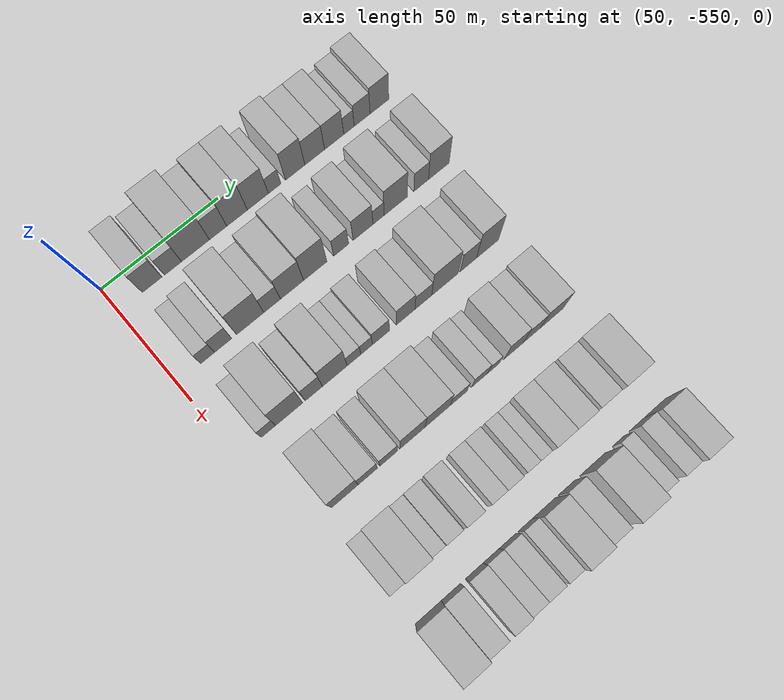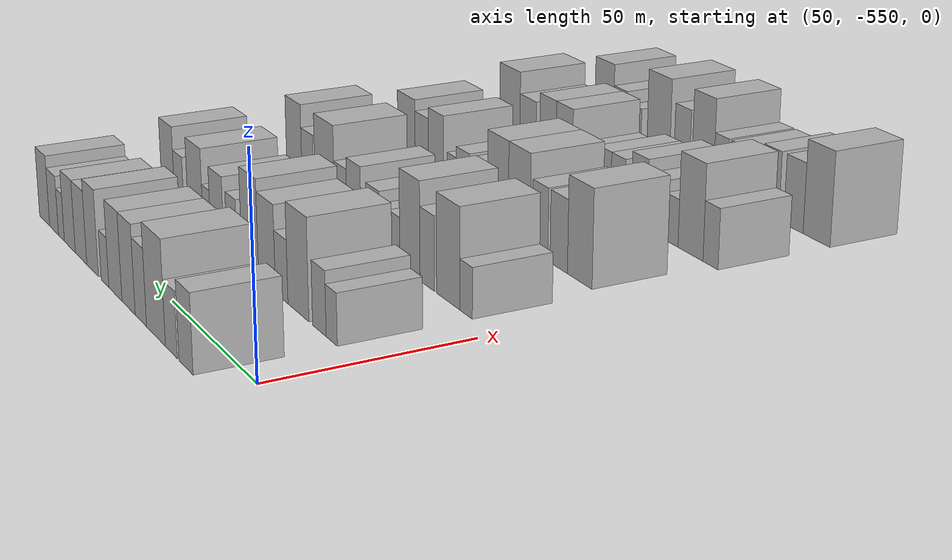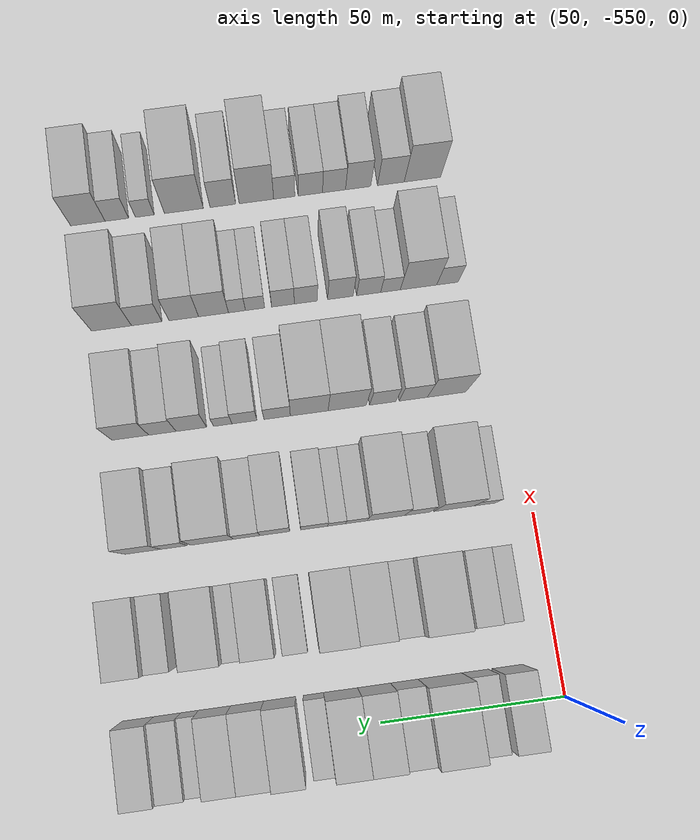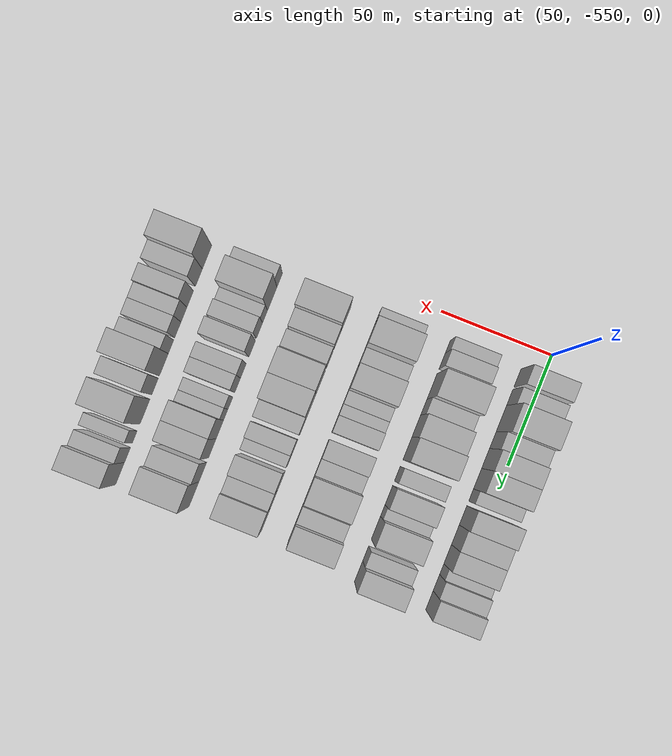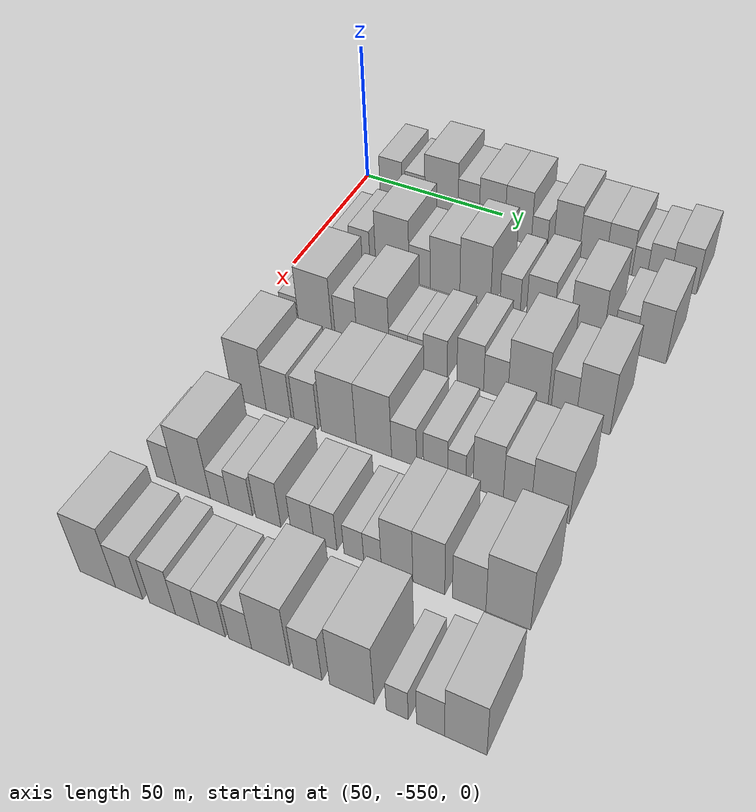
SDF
<sdf version="1.6">
 <world name="default">
  <model name="building_1">
   <static>1</static>
   <pose>50.0000 -535.8511 0 0.000000 0.000000 0.000000</pose>
   <link name="link">
    <pose>0 0 9.00 0 0 0</pose>
    <collision name="collision"><geometry><box><size>20.0000 8.2978 18.0000</size></box></geometry></collision>
    <visual name="visual">
     <cast_shadows>0</cast_shadows>
     <geometry><box><size>20.0000 8.2978 18.0000</size></box></geometry>
     <material>
      <script>
       <uri>model://HANNAS_wall/materials/scripts</uri>
       <uri>model://HANNAS_wall/materials/textures</uri>
       <name>vrc/HANNAS_wall</name>
      </script>
     </material>
    </visual>
   </link>
  </model>
  <model name="building_2">
   <static>1</static>
   <pose>50.0000 -527.0699 0 0.000000 0.000000 0.000000</pose>
   <link name="link">
    <pose>0 0 7.50 0 0 0</pose>
    <collision name="collision"><geometry><box><size>20.0000 7.2646 15.0000</size></box></geometry></collision>
    <visual name="visual">
     <cast_shadows>0</cast_shadows>
     <geometry><box><size>20.0000 7.2646 15.0000</size></box></geometry>
     <material>
      <script>
       <uri>model://HANNAS_wall/materials/scripts</uri>
       <uri>model://HANNAS_wall/materials/textures</uri>
       <name>vrc/HANNAS_wall</name>
      </script>
     </material>
    </visual>
   </link>
  </model>
  <model name="building_3">
   <static>1</static>
   <pose>50.0000 -517.4618 0 0.000000 0.000000 0.000000</pose>
   <link name="link">
    <pose>0 0 12.00 0 0 0</pose>
    <collision name="collision"><geometry><box><size>20.0000 11.9516 24.0000</size></box></geometry></collision>
    <visual name="visual">
     <cast_shadows>0</cast_shadows>
     <geometry><box><size>20.0000 11.9516 24.0000</size></box></geometry>
     <material>
      <script>
       <uri>model://HANNAS_wall/materials/scripts</uri>
       <uri>model://HANNAS_wall/materials/textures</uri>
       <name>vrc/HANNAS_wall</name>
      </script>
     </material>
    </visual>
   </link>
  </model>
  <model name="building_4">
   <static>1</static>
   <pose>50.0000 -507.7472 0 0.000000 0.000000 0.000000</pose>
   <link name="link">
    <pose>0 0 9.00 0 0 0</pose>
    <collision name="collision"><geometry><box><size>20.0000 7.4775 18.0000</size></box></geometry></collision>
    <visual name="visual">
     <cast_shadows>0</cast_shadows>
     <geometry><box><size>20.0000 7.4775 18.0000</size></box></geometry>
     <material>
      <script>
       <uri>model://HANNAS_wall/materials/scripts</uri>
       <uri>model://HANNAS_wall/materials/textures</uri>
       <name>vrc/HANNAS_wall</name>
      </script>
     </material>
    </visual>
   </link>
  </model>
  <model name="building_5">
   <static>1</static>
   <pose>50.0000 -499.5124 0 0.000000 0.000000 0.000000</pose>
   <link name="link">
    <pose>0 0 10.50 0 0 0</pose>
    <collision name="collision"><geometry><box><size>20.0000 8.9919 21.0000</size></box></geometry></collision>
    <visual name="visual">
     <cast_shadows>0</cast_shadows>
     <geometry><box><size>20.0000 8.9919 21.0000</size></box></geometry>
     <material>
      <script>
       <uri>model://HANNAS_wall/materials/scripts</uri>
       <uri>model://HANNAS_wall/materials/textures</uri>
       <name>vrc/HANNAS_wall</name>
      </script>
     </material>
    </visual>
   </link>
  </model>
  <model name="building_6">
   <static>1</static>
   <pose>50.0000 -490.3969 0 0.000000 0.000000 0.000000</pose>
   <link name="link">
    <pose>0 0 10.50 0 0 0</pose>
    <collision name="collision"><geometry><box><size>20.0000 9.2392 21.0000</size></box></geometry></collision>
    <visual name="visual">
     <cast_shadows>0</cast_shadows>
     <geometry><box><size>20.0000 9.2392 21.0000</size></box></geometry>
     <material>
      <script>
       <uri>model://HANNAS_wall/materials/scripts</uri>
       <uri>model://HANNAS_wall/materials/textures</uri>
       <name>vrc/HANNAS_wall</name>
      </script>
     </material>
    </visual>
   </link>
  </model>
  <model name="building_7">
   <static>1</static>
   <pose>50.0000 -483.0054 0 0.000000 0.000000 0.000000</pose>
   <link name="link">
    <pose>0 0 6.00 0 0 0</pose>
    <collision name="collision"><geometry><box><size>20.0000 5.5439 12.0000</size></box></geometry></collision>
    <visual name="visual">
     <cast_shadows>0</cast_shadows>
     <geometry><box><size>20.0000 5.5439 12.0000</size></box></geometry>
     <material>
      <script>
       <uri>model://HANNAS_wall/materials/scripts</uri>
       <uri>model://HANNAS_wall/materials/textures</uri>
       <name>vrc/HANNAS_wall</name>
      </script>
     </material>
    </visual>
   </link>
  </model>
  <model name="building_8">
   <static>1</static>
   <pose>50.0000 -473.8988 0 0.000000 0.000000 0.000000</pose>
   <link name="link">
    <pose>0 0 10.50 0 0 0</pose>
    <collision name="collision"><geometry><box><size>20.0000 8.6692 21.0000</size></box></geometry></collision>
    <visual name="visual">
     <cast_shadows>0</cast_shadows>
     <geometry><box><size>20.0000 8.6692 21.0000</size></box></geometry>
     <material>
      <script>
       <uri>model://HANNAS_wall/materials/scripts</uri>
       <uri>model://HANNAS_wall/materials/textures</uri>
       <name>vrc/HANNAS_wall</name>
      </script>
     </material>
    </visual>
   </link>
  </model>
  <model name="building_9">
   <static>1</static>
   <pose>50.0000 -465.1315 0 0.000000 0.000000 0.000000</pose>
   <link name="link">
    <pose>0 0 9.00 0 0 0</pose>
    <collision name="collision"><geometry><box><size>20.0000 8.8655 18.0000</size></box></geometry></collision>
    <visual name="visual">
     <cast_shadows>0</cast_shadows>
     <geometry><box><size>20.0000 8.8655 18.0000</size></box></geometry>
     <material>
      <script>
       <uri>model://HANNAS_wall/materials/scripts</uri>
       <uri>model://HANNAS_wall/materials/textures</uri>
       <name>vrc/HANNAS_wall</name>
      </script>
     </material>
    </visual>
   </link>
  </model>
  <model name="building_10">
   <static>1</static>
   <pose>50.0000 -456.3737 0 0.000000 0.000000 0.000000</pose>
   <link name="link">
    <pose>0 0 9.00 0 0 0</pose>
    <collision name="collision"><geometry><box><size>20.0000 8.6501 18.0000</size></box></geometry></collision>
    <visual name="visual">
     <cast_shadows>0</cast_shadows>
     <geometry><box><size>20.0000 8.6501 18.0000</size></box></geometry>
     <material>
      <script>
       <uri>model://HANNAS_wall/materials/scripts</uri>
       <uri>model://HANNAS_wall/materials/textures</uri>
       <name>vrc/HANNAS_wall</name>
      </script>
     </material>
    </visual>
   </link>
  </model>
  <model name="building_11">
   <static>1</static>
   <pose>50.0000 -449.6461 0 0.000000 0.000000 0.000000</pose>
   <link name="link">
    <pose>0 0 6.00 0 0 0</pose>
    <collision name="collision"><geometry><box><size>20.0000 4.8050 12.0000</size></box></geometry></collision>
    <visual name="visual">
     <cast_shadows>0</cast_shadows>
     <geometry><box><size>20.0000 4.8050 12.0000</size></box></geometry>
     <material>
      <script>
       <uri>model://HANNAS_wall/materials/scripts</uri>
       <uri>model://HANNAS_wall/materials/textures</uri>
       <name>vrc/HANNAS_wall</name>
      </script>
     </material>
    </visual>
   </link>
  </model>
  <model name="building_12">
   <static>1</static>
   <pose>50.0000 -443.6025 0 0.000000 0.000000 0.000000</pose>
   <link name="link">
    <pose>0 0 7.50 0 0 0</pose>
    <collision name="collision"><geometry><box><size>20.0000 7.2822 15.0000</size></box></geometry></collision>
    <visual name="visual">
     <cast_shadows>0</cast_shadows>
     <geometry><box><size>20.0000 7.2822 15.0000</size></box></geometry>
     <material>
      <script>
       <uri>model://HANNAS_wall/materials/scripts</uri>
       <uri>model://HANNAS_wall/materials/textures</uri>
       <name>vrc/HANNAS_wall</name>
      </script>
     </material>
    </visual>
   </link>
  </model>
  <model name="building_13">
   <static>1</static>
   <pose>50.0000 -435.6851 0 0.000000 0.000000 0.000000</pose>
   <link name="link">
    <pose>0 0 9.00 0 0 0</pose>
    <collision name="collision"><geometry><box><size>20.0000 8.5528 18.0000</size></box></geometry></collision>
    <visual name="visual">
     <cast_shadows>0</cast_shadows>
     <geometry><box><size>20.0000 8.5528 18.0000</size></box></geometry>
     <material>
      <script>
       <uri>model://HANNAS_wall/materials/scripts</uri>
       <uri>model://HANNAS_wall/materials/textures</uri>
       <name>vrc/HANNAS_wall</name>
      </script>
     </material>
    </visual>
   </link>
  </model>
  <model name="building_121">
   <static>1</static>
   <pose>82.0000 -537.1102 0 0.000000 0.000000 0.000000</pose>
   <link name="link">
    <pose>0 0 6.00 0 0 0</pose>
    <collision name="collision"><geometry><box><size>20.0000 5.7795 12.0000</size></box></geometry></collision>
    <visual name="visual">
     <cast_shadows>0</cast_shadows>
     <geometry><box><size>20.0000 5.7795 12.0000</size></box></geometry>
     <material>
      <script>
       <uri>model://HANNAS_wall/materials/scripts</uri>
       <uri>model://HANNAS_wall/materials/textures</uri>
       <name>vrc/HANNAS_wall</name>
      </script>
     </material>
    </visual>
   </link>
  </model>
  <model name="building_122">
   <static>1</static>
   <pose>82.0000 -530.6249 0 0.000000 0.000000 0.000000</pose>
   <link name="link">
    <pose>0 0 7.50 0 0 0</pose>
    <collision name="collision"><geometry><box><size>20.0000 7.1912 15.0000</size></box></geometry></collision>
    <visual name="visual">
     <cast_shadows>0</cast_shadows>
     <geometry><box><size>20.0000 7.1912 15.0000</size></box></geometry>
     <material>
      <script>
       <uri>model://HANNAS_wall/materials/scripts</uri>
       <uri>model://HANNAS_wall/materials/textures</uri>
       <name>vrc/HANNAS_wall</name>
      </script>
     </material>
    </visual>
   </link>
  </model>
  <model name="building_123">
   <static>1</static>
   <pose>82.0000 -519.2367 0 0.000000 0.000000 0.000000</pose>
   <link name="link">
    <pose>0 0 12.00 0 0 0</pose>
    <collision name="collision"><geometry><box><size>20.0000 11.5851 24.0000</size></box></geometry></collision>
    <visual name="visual">
     <cast_shadows>0</cast_shadows>
     <geometry><box><size>20.0000 11.5851 24.0000</size></box></geometry>
     <material>
      <script>
       <uri>model://HANNAS_wall/materials/scripts</uri>
       <uri>model://HANNAS_wall/materials/textures</uri>
       <name>vrc/HANNAS_wall</name>
      </script>
     </material>
    </visual>
   </link>
  </model>
  <model name="building_124">
   <static>1</static>
   <pose>82.0000 -509.8719 0 0.000000 0.000000 0.000000</pose>
   <link name="link">
    <pose>0 0 7.50 0 0 0</pose>
    <collision name="collision"><geometry><box><size>20.0000 7.1445 15.0000</size></box></geometry></collision>
    <visual name="visual">
     <cast_shadows>0</cast_shadows>
     <geometry><box><size>20.0000 7.1445 15.0000</size></box></geometry>
     <material>
      <script>
       <uri>model://HANNAS_wall/materials/scripts</uri>
       <uri>model://HANNAS_wall/materials/textures</uri>
       <name>vrc/HANNAS_wall</name>
      </script>
     </material>
    </visual>
   </link>
  </model>
  <model name="building_125">
   <static>1</static>
   <pose>82.0000 -501.3055 0 0.000000 0.000000 0.000000</pose>
   <link name="link">
    <pose>0 0 10.50 0 0 0</pose>
    <collision name="collision"><geometry><box><size>20.0000 9.9885 21.0000</size></box></geometry></collision>
    <visual name="visual">
     <cast_shadows>0</cast_shadows>
     <geometry><box><size>20.0000 9.9885 21.0000</size></box></geometry>
     <material>
      <script>
       <uri>model://HANNAS_wall/materials/scripts</uri>
       <uri>model://HANNAS_wall/materials/textures</uri>
       <name>vrc/HANNAS_wall</name>
      </script>
     </material>
    </visual>
   </link>
  </model>
  <model name="building_126">
   <static>1</static>
   <pose>82.0000 -491.2129 0 0.000000 0.000000 0.000000</pose>
   <link name="link">
    <pose>0 0 12.00 0 0 0</pose>
    <collision name="collision"><geometry><box><size>20.0000 10.1966 24.0000</size></box></geometry></collision>
    <visual name="visual">
     <cast_shadows>0</cast_shadows>
     <geometry><box><size>20.0000 10.1966 24.0000</size></box></geometry>
     <material>
      <script>
       <uri>model://HANNAS_wall/materials/scripts</uri>
       <uri>model://HANNAS_wall/materials/textures</uri>
       <name>vrc/HANNAS_wall</name>
      </script>
     </material>
    </visual>
   </link>
  </model>
  <model name="building_127">
   <static>1</static>
   <pose>82.0000 -479.8260 0 0.000000 0.000000 0.000000</pose>
   <link name="link">
    <pose>0 0 7.50 0 0 0</pose>
    <collision name="collision"><geometry><box><size>20.0000 6.5773 15.0000</size></box></geometry></collision>
    <visual name="visual">
     <cast_shadows>0</cast_shadows>
     <geometry><box><size>20.0000 6.5773 15.0000</size></box></geometry>
     <material>
      <script>
       <uri>model://HANNAS_wall/materials/scripts</uri>
       <uri>model://HANNAS_wall/materials/textures</uri>
       <name>vrc/HANNAS_wall</name>
      </script>
     </material>
    </visual>
   </link>
  </model>
  <model name="building_128">
   <static>1</static>
   <pose>82.0000 -470.1416 0 0.000000 0.000000 0.000000</pose>
   <link name="link">
    <pose>0 0 9.00 0 0 0</pose>
    <collision name="collision"><geometry><box><size>20.0000 8.7916 18.0000</size></box></geometry></collision>
    <visual name="visual">
     <cast_shadows>0</cast_shadows>
     <geometry><box><size>20.0000 8.7916 18.0000</size></box></geometry>
     <material>
      <script>
       <uri>model://HANNAS_wall/materials/scripts</uri>
       <uri>model://HANNAS_wall/materials/textures</uri>
       <name>vrc/HANNAS_wall</name>
      </script>
     </material>
    </visual>
   </link>
  </model>
  <model name="building_129">
   <static>1</static>
   <pose>82.0000 -463.2264 0 0.000000 0.000000 0.000000</pose>
   <link name="link">
    <pose>0 0 6.00 0 0 0</pose>
    <collision name="collision"><geometry><box><size>20.0000 5.0387 12.0000</size></box></geometry></collision>
    <visual name="visual">
     <cast_shadows>0</cast_shadows>
     <geometry><box><size>20.0000 5.0387 12.0000</size></box></geometry>
     <material>
      <script>
       <uri>model://HANNAS_wall/materials/scripts</uri>
       <uri>model://HANNAS_wall/materials/textures</uri>
       <name>vrc/HANNAS_wall</name>
      </script>
     </material>
    </visual>
   </link>
  </model>
  <model name="building_130">
   <static>1</static>
   <pose>82.0000 -455.5113 0 0.000000 0.000000 0.000000</pose>
   <link name="link">
    <pose>0 0 10.50 0 0 0</pose>
    <collision name="collision"><geometry><box><size>20.0000 10.3915 21.0000</size></box></geometry></collision>
    <visual name="visual">
     <cast_shadows>0</cast_shadows>
     <geometry><box><size>20.0000 10.3915 21.0000</size></box></geometry>
     <material>
      <script>
       <uri>model://HANNAS_wall/materials/scripts</uri>
       <uri>model://HANNAS_wall/materials/textures</uri>
       <name>vrc/HANNAS_wall</name>
      </script>
     </material>
    </visual>
   </link>
  </model>
  <model name="building_131">
   <static>1</static>
   <pose>82.0000 -443.9804 0 0.000000 0.000000 0.000000</pose>
   <link name="link">
    <pose>0 0 7.50 0 0 0</pose>
    <collision name="collision"><geometry><box><size>20.0000 6.6704 15.0000</size></box></geometry></collision>
    <visual name="visual">
     <cast_shadows>0</cast_shadows>
     <geometry><box><size>20.0000 6.6704 15.0000</size></box></geometry>
     <material>
      <script>
       <uri>model://HANNAS_wall/materials/scripts</uri>
       <uri>model://HANNAS_wall/materials/textures</uri>
       <name>vrc/HANNAS_wall</name>
      </script>
     </material>
    </visual>
   </link>
  </model>
  <model name="building_132">
   <static>1</static>
   <pose>82.0000 -435.9180 0 0.000000 0.000000 0.000000</pose>
   <link name="link">
    <pose>0 0 10.50 0 0 0</pose>
    <collision name="collision"><geometry><box><size>20.0000 9.4544 21.0000</size></box></geometry></collision>
    <visual name="visual">
     <cast_shadows>0</cast_shadows>
     <geometry><box><size>20.0000 9.4544 21.0000</size></box></geometry>
     <material>
      <script>
       <uri>model://HANNAS_wall/materials/scripts</uri>
       <uri>model://HANNAS_wall/materials/textures</uri>
       <name>vrc/HANNAS_wall</name>
      </script>
     </material>
    </visual>
   </link>
  </model>
  <model name="building_245">
   <static>1</static>
   <pose>114.0000 -537.0485 0 0.000000 0.000000 0.000000</pose>
   <link name="link">
    <pose>0 0 6.00 0 0 0</pose>
    <collision name="collision"><geometry><box><size>20.0000 5.9030 12.0000</size></box></geometry></collision>
    <visual name="visual">
     <cast_shadows>0</cast_shadows>
     <geometry><box><size>20.0000 5.9030 12.0000</size></box></geometry>
     <material>
      <script>
       <uri>model://HANNAS_wall/materials/scripts</uri>
       <uri>model://HANNAS_wall/materials/textures</uri>
       <name>vrc/HANNAS_wall</name>
      </script>
     </material>
    </visual>
   </link>
  </model>
  <model name="building_246">
   <static>1</static>
   <pose>114.0000 -528.4424 0 0.000000 0.000000 0.000000</pose>
   <link name="link">
    <pose>0 0 12.00 0 0 0</pose>
    <collision name="collision"><geometry><box><size>20.0000 11.3092 24.0000</size></box></geometry></collision>
    <visual name="visual">
     <cast_shadows>0</cast_shadows>
     <geometry><box><size>20.0000 11.3092 24.0000</size></box></geometry>
     <material>
      <script>
       <uri>model://HANNAS_wall/materials/scripts</uri>
       <uri>model://HANNAS_wall/materials/textures</uri>
       <name>vrc/HANNAS_wall</name>
      </script>
     </material>
    </visual>
   </link>
  </model>
  <model name="building_247">
   <static>1</static>
   <pose>114.0000 -518.1438 0 0.000000 0.000000 0.000000</pose>
   <link name="link">
    <pose>0 0 9.00 0 0 0</pose>
    <collision name="collision"><geometry><box><size>20.0000 7.2878 18.0000</size></box></geometry></collision>
    <visual name="visual">
     <cast_shadows>0</cast_shadows>
     <geometry><box><size>20.0000 7.2878 18.0000</size></box></geometry>
     <material>
      <script>
       <uri>model://HANNAS_wall/materials/scripts</uri>
       <uri>model://HANNAS_wall/materials/textures</uri>
       <name>vrc/HANNAS_wall</name>
      </script>
     </material>
    </visual>
   </link>
  </model>
  <model name="building_248">
   <static>1</static>
   <pose>114.0000 -509.2557 0 0.000000 0.000000 0.000000</pose>
   <link name="link">
    <pose>0 0 12.00 0 0 0</pose>
    <collision name="collision"><geometry><box><size>20.0000 10.4885 24.0000</size></box></geometry></collision>
    <visual name="visual">
     <cast_shadows>0</cast_shadows>
     <geometry><box><size>20.0000 10.4885 24.0000</size></box></geometry>
     <material>
      <script>
       <uri>model://HANNAS_wall/materials/scripts</uri>
       <uri>model://HANNAS_wall/materials/textures</uri>
       <name>vrc/HANNAS_wall</name>
      </script>
     </material>
    </visual>
   </link>
  </model>
  <model name="building_249">
   <static>1</static>
   <pose>114.0000 -501.0436 0 0.000000 0.000000 0.000000</pose>
   <link name="link">
    <pose>0 0 6.00 0 0 0</pose>
    <collision name="collision"><geometry><box><size>20.0000 5.9357 12.0000</size></box></geometry></collision>
    <visual name="visual">
     <cast_shadows>0</cast_shadows>
     <geometry><box><size>20.0000 5.9357 12.0000</size></box></geometry>
     <material>
      <script>
       <uri>model://HANNAS_wall/materials/scripts</uri>
       <uri>model://HANNAS_wall/materials/textures</uri>
       <name>vrc/HANNAS_wall</name>
      </script>
     </material>
    </visual>
   </link>
  </model>
  <model name="building_250">
   <static>1</static>
   <pose>114.0000 -495.5862 0 0.000000 0.000000 0.000000</pose>
   <link name="link">
    <pose>0 0 6.00 0 0 0</pose>
    <collision name="collision"><geometry><box><size>20.0000 4.9792 12.0000</size></box></geometry></collision>
    <visual name="visual">
     <cast_shadows>0</cast_shadows>
     <geometry><box><size>20.0000 4.9792 12.0000</size></box></geometry>
     <material>
      <script>
       <uri>model://HANNAS_wall/materials/scripts</uri>
       <uri>model://HANNAS_wall/materials/textures</uri>
       <name>vrc/HANNAS_wall</name>
      </script>
     </material>
    </visual>
   </link>
  </model>
  <model name="building_251">
   <static>1</static>
   <pose>114.0000 -489.3744 0 0.000000 0.000000 0.000000</pose>
   <link name="link">
    <pose>0 0 7.50 0 0 0</pose>
    <collision name="collision"><geometry><box><size>20.0000 7.4444 15.0000</size></box></geometry></collision>
    <visual name="visual">
     <cast_shadows>0</cast_shadows>
     <geometry><box><size>20.0000 7.4444 15.0000</size></box></geometry>
     <material>
      <script>
       <uri>model://HANNAS_wall/materials/scripts</uri>
       <uri>model://HANNAS_wall/materials/textures</uri>
       <name>vrc/HANNAS_wall</name>
      </script>
     </material>
    </visual>
   </link>
  </model>
  <model name="building_252">
   <static>1</static>
   <pose>114.0000 -478.5495 0 0.000000 0.000000 0.000000</pose>
   <link name="link">
    <pose>0 0 9.00 0 0 0</pose>
    <collision name="collision"><geometry><box><size>20.0000 8.2054 18.0000</size></box></geometry></collision>
    <visual name="visual">
     <cast_shadows>0</cast_shadows>
     <geometry><box><size>20.0000 8.2054 18.0000</size></box></geometry>
     <material>
      <script>
       <uri>model://HANNAS_wall/materials/scripts</uri>
       <uri>model://HANNAS_wall/materials/textures</uri>
       <name>vrc/HANNAS_wall</name>
      </script>
     </material>
    </visual>
   </link>
  </model>
  <model name="building_253">
   <static>1</static>
   <pose>114.0000 -470.7600 0 0.000000 0.000000 0.000000</pose>
   <link name="link">
    <pose>0 0 7.50 0 0 0</pose>
    <collision name="collision"><geometry><box><size>20.0000 7.3736 15.0000</size></box></geometry></collision>
    <visual name="visual">
     <cast_shadows>0</cast_shadows>
     <geometry><box><size>20.0000 7.3736 15.0000</size></box></geometry>
     <material>
      <script>
       <uri>model://HANNAS_wall/materials/scripts</uri>
       <uri>model://HANNAS_wall/materials/textures</uri>
       <name>vrc/HANNAS_wall</name>
      </script>
     </material>
    </visual>
   </link>
  </model>
  <model name="building_254">
   <static>1</static>
   <pose>114.0000 -461.1799 0 0.000000 0.000000 0.000000</pose>
   <link name="link">
    <pose>0 0 12.00 0 0 0</pose>
    <collision name="collision"><geometry><box><size>20.0000 11.7867 24.0000</size></box></geometry></collision>
    <visual name="visual">
     <cast_shadows>0</cast_shadows>
     <geometry><box><size>20.0000 11.7867 24.0000</size></box></geometry>
     <material>
      <script>
       <uri>model://HANNAS_wall/materials/scripts</uri>
       <uri>model://HANNAS_wall/materials/textures</uri>
       <name>vrc/HANNAS_wall</name>
      </script>
     </material>
    </visual>
   </link>
  </model>
  <model name="building_255">
   <static>1</static>
   <pose>114.0000 -450.6151 0 0.000000 0.000000 0.000000</pose>
   <link name="link">
    <pose>0 0 9.00 0 0 0</pose>
    <collision name="collision"><geometry><box><size>20.0000 7.3430 18.0000</size></box></geometry></collision>
    <visual name="visual">
     <cast_shadows>0</cast_shadows>
     <geometry><box><size>20.0000 7.3430 18.0000</size></box></geometry>
     <material>
      <script>
       <uri>model://HANNAS_wall/materials/scripts</uri>
       <uri>model://HANNAS_wall/materials/textures</uri>
       <name>vrc/HANNAS_wall</name>
      </script>
     </material>
    </visual>
   </link>
  </model>
  <model name="building_256">
   <static>1</static>
   <pose>114.0000 -442.0031 0 0.000000 0.000000 0.000000</pose>
   <link name="link">
    <pose>0 0 12.00 0 0 0</pose>
    <collision name="collision"><geometry><box><size>20.0000 9.8809 24.0000</size></box></geometry></collision>
    <visual name="visual">
     <cast_shadows>0</cast_shadows>
     <geometry><box><size>20.0000 9.8809 24.0000</size></box></geometry>
     <material>
      <script>
       <uri>model://HANNAS_wall/materials/scripts</uri>
       <uri>model://HANNAS_wall/materials/textures</uri>
       <name>vrc/HANNAS_wall</name>
      </script>
     </material>
    </visual>
   </link>
  </model>
  <model name="building_370">
   <static>1</static>
   <pose>146.0000 -531.5206 0 0.000000 0.000000 0.000000</pose>
   <link name="link">
    <pose>0 0 12.00 0 0 0</pose>
    <collision name="collision"><geometry><box><size>20.0000 10.9589 24.0000</size></box></geometry></collision>
    <visual name="visual">
     <cast_shadows>0</cast_shadows>
     <geometry><box><size>20.0000 10.9589 24.0000</size></box></geometry>
     <material>
      <script>
       <uri>model://HANNAS_wall/materials/scripts</uri>
       <uri>model://HANNAS_wall/materials/textures</uri>
       <name>vrc/HANNAS_wall</name>
      </script>
     </material>
    </visual>
   </link>
  </model>
  <model name="building_371">
   <static>1</static>
   <pose>146.0000 -522.0286 0 0.000000 0.000000 0.000000</pose>
   <link name="link">
    <pose>0 0 9.00 0 0 0</pose>
    <collision name="collision"><geometry><box><size>20.0000 8.0251 18.0000</size></box></geometry></collision>
    <visual name="visual">
     <cast_shadows>0</cast_shadows>
     <geometry><box><size>20.0000 8.0251 18.0000</size></box></geometry>
     <material>
      <script>
       <uri>model://HANNAS_wall/materials/scripts</uri>
       <uri>model://HANNAS_wall/materials/textures</uri>
       <name>vrc/HANNAS_wall</name>
      </script>
     </material>
    </visual>
   </link>
  </model>
  <model name="building_372">
   <static>1</static>
   <pose>146.0000 -513.3007 0 0.000000 0.000000 0.000000</pose>
   <link name="link">
    <pose>0 0 9.00 0 0 0</pose>
    <collision name="collision"><geometry><box><size>20.0000 7.4307 18.0000</size></box></geometry></collision>
    <visual name="visual">
     <cast_shadows>0</cast_shadows>
     <geometry><box><size>20.0000 7.4307 18.0000</size></box></geometry>
     <material>
      <script>
       <uri>model://HANNAS_wall/materials/scripts</uri>
       <uri>model://HANNAS_wall/materials/textures</uri>
       <name>vrc/HANNAS_wall</name>
      </script>
     </material>
    </visual>
   </link>
  </model>
  <model name="building_373">
   <static>1</static>
   <pose>146.0000 -503.2010 0 0.000000 0.000000 0.000000</pose>
   <link name="link">
    <pose>0 0 12.00 0 0 0</pose>
    <collision name="collision"><geometry><box><size>20.0000 10.7687 24.0000</size></box></geometry></collision>
    <visual name="visual">
     <cast_shadows>0</cast_shadows>
     <geometry><box><size>20.0000 10.7687 24.0000</size></box></geometry>
     <material>
      <script>
       <uri>model://HANNAS_wall/materials/scripts</uri>
       <uri>model://HANNAS_wall/materials/textures</uri>
       <name>vrc/HANNAS_wall</name>
      </script>
     </material>
    </visual>
   </link>
  </model>
  <model name="building_374">
   <static>1</static>
   <pose>146.0000 -492.4739 0 0.000000 0.000000 0.000000</pose>
   <link name="link">
    <pose>0 0 12.00 0 0 0</pose>
    <collision name="collision"><geometry><box><size>20.0000 10.6856 24.0000</size></box></geometry></collision>
    <visual name="visual">
     <cast_shadows>0</cast_shadows>
     <geometry><box><size>20.0000 10.6856 24.0000</size></box></geometry>
     <material>
      <script>
       <uri>model://HANNAS_wall/materials/scripts</uri>
       <uri>model://HANNAS_wall/materials/textures</uri>
       <name>vrc/HANNAS_wall</name>
      </script>
     </material>
    </visual>
   </link>
  </model>
  <model name="building_375">
   <static>1</static>
   <pose>146.0000 -483.4173 0 0.000000 0.000000 0.000000</pose>
   <link name="link">
    <pose>0 0 7.50 0 0 0</pose>
    <collision name="collision"><geometry><box><size>20.0000 7.4275 15.0000</size></box></geometry></collision>
    <visual name="visual">
     <cast_shadows>0</cast_shadows>
     <geometry><box><size>20.0000 7.4275 15.0000</size></box></geometry>
     <material>
      <script>
       <uri>model://HANNAS_wall/materials/scripts</uri>
       <uri>model://HANNAS_wall/materials/textures</uri>
       <name>vrc/HANNAS_wall</name>
      </script>
     </material>
    </visual>
   </link>
  </model>
  <model name="building_376">
   <static>1</static>
   <pose>146.0000 -474.1877 0 0.000000 0.000000 0.000000</pose>
   <link name="link">
    <pose>0 0 7.50 0 0 0</pose>
    <collision name="collision"><geometry><box><size>20.0000 7.0317 15.0000</size></box></geometry></collision>
    <visual name="visual">
     <cast_shadows>0</cast_shadows>
     <geometry><box><size>20.0000 7.0317 15.0000</size></box></geometry>
     <material>
      <script>
       <uri>model://HANNAS_wall/materials/scripts</uri>
       <uri>model://HANNAS_wall/materials/textures</uri>
       <name>vrc/HANNAS_wall</name>
      </script>
     </material>
    </visual>
   </link>
  </model>
  <model name="building_377">
   <static>1</static>
   <pose>146.0000 -468.0804 0 0.000000 0.000000 0.000000</pose>
   <link name="link">
    <pose>0 0 6.00 0 0 0</pose>
    <collision name="collision"><geometry><box><size>20.0000 5.1830 12.0000</size></box></geometry></collision>
    <visual name="visual">
     <cast_shadows>0</cast_shadows>
     <geometry><box><size>20.0000 5.1830 12.0000</size></box></geometry>
     <material>
      <script>
       <uri>model://HANNAS_wall/materials/scripts</uri>
       <uri>model://HANNAS_wall/materials/textures</uri>
       <name>vrc/HANNAS_wall</name>
      </script>
     </material>
    </visual>
   </link>
  </model>
  <model name="building_378">
   <static>1</static>
   <pose>146.0000 -459.2044 0 0.000000 0.000000 0.000000</pose>
   <link name="link">
    <pose>0 0 10.50 0 0 0</pose>
    <collision name="collision"><geometry><box><size>20.0000 8.5689 21.0000</size></box></geometry></collision>
    <visual name="visual">
     <cast_shadows>0</cast_shadows>
     <geometry><box><size>20.0000 8.5689 21.0000</size></box></geometry>
     <material>
      <script>
       <uri>model://HANNAS_wall/materials/scripts</uri>
       <uri>model://HANNAS_wall/materials/textures</uri>
       <name>vrc/HANNAS_wall</name>
      </script>
     </material>
    </visual>
   </link>
  </model>
  <model name="building_379">
   <static>1</static>
   <pose>146.0000 -451.0552 0 0.000000 0.000000 0.000000</pose>
   <link name="link">
    <pose>0 0 9.00 0 0 0</pose>
    <collision name="collision"><geometry><box><size>20.0000 7.7296 18.0000</size></box></geometry></collision>
    <visual name="visual">
     <cast_shadows>0</cast_shadows>
     <geometry><box><size>20.0000 7.7296 18.0000</size></box></geometry>
     <material>
      <script>
       <uri>model://HANNAS_wall/materials/scripts</uri>
       <uri>model://HANNAS_wall/materials/textures</uri>
       <name>vrc/HANNAS_wall</name>
      </script>
     </material>
    </visual>
   </link>
  </model>
  <model name="building_380">
   <static>1</static>
   <pose>146.0000 -442.0049 0 0.000000 0.000000 0.000000</pose>
   <link name="link">
    <pose>0 0 10.50 0 0 0</pose>
    <collision name="collision"><geometry><box><size>20.0000 10.3711 21.0000</size></box></geometry></collision>
    <visual name="visual">
     <cast_shadows>0</cast_shadows>
     <geometry><box><size>20.0000 10.3711 21.0000</size></box></geometry>
     <material>
      <script>
       <uri>model://HANNAS_wall/materials/scripts</uri>
       <uri>model://HANNAS_wall/materials/textures</uri>
       <name>vrc/HANNAS_wall</name>
      </script>
     </material>
    </visual>
   </link>
  </model>
  <model name="building_486">
   <static>1</static>
   <pose>178.0000 -536.9062 0 0.000000 0.000000 0.000000</pose>
   <link name="link">
    <pose>0 0 7.50 0 0 0</pose>
    <collision name="collision"><geometry><box><size>20.0000 6.1877 15.0000</size></box></geometry></collision>
    <visual name="visual">
     <cast_shadows>0</cast_shadows>
     <geometry><box><size>20.0000 6.1877 15.0000</size></box></geometry>
     <material>
      <script>
       <uri>model://HANNAS_wall/materials/scripts</uri>
       <uri>model://HANNAS_wall/materials/textures</uri>
       <name>vrc/HANNAS_wall</name>
      </script>
     </material>
    </visual>
   </link>
  </model>
  <model name="building_487">
   <static>1</static>
   <pose>178.0000 -528.5273 0 0.000000 0.000000 0.000000</pose>
   <link name="link">
    <pose>0 0 12.00 0 0 0</pose>
    <collision name="collision"><geometry><box><size>20.0000 10.5701 24.0000</size></box></geometry></collision>
    <visual name="visual">
     <cast_shadows>0</cast_shadows>
     <geometry><box><size>20.0000 10.5701 24.0000</size></box></geometry>
     <material>
      <script>
       <uri>model://HANNAS_wall/materials/scripts</uri>
       <uri>model://HANNAS_wall/materials/textures</uri>
       <name>vrc/HANNAS_wall</name>
      </script>
     </material>
    </visual>
   </link>
  </model>
  <model name="building_488">
   <static>1</static>
   <pose>178.0000 -520.3996 0 0.000000 0.000000 0.000000</pose>
   <link name="link">
    <pose>0 0 6.00 0 0 0</pose>
    <collision name="collision"><geometry><box><size>20.0000 5.6854 12.0000</size></box></geometry></collision>
    <visual name="visual">
     <cast_shadows>0</cast_shadows>
     <geometry><box><size>20.0000 5.6854 12.0000</size></box></geometry>
     <material>
      <script>
       <uri>model://HANNAS_wall/materials/scripts</uri>
       <uri>model://HANNAS_wall/materials/textures</uri>
       <name>vrc/HANNAS_wall</name>
      </script>
     </material>
    </visual>
   </link>
  </model>
  <model name="building_489">
   <static>1</static>
   <pose>178.0000 -514.0746 0 0.000000 0.000000 0.000000</pose>
   <link name="link">
    <pose>0 0 7.50 0 0 0</pose>
    <collision name="collision"><geometry><box><size>20.0000 6.9647 15.0000</size></box></geometry></collision>
    <visual name="visual">
     <cast_shadows>0</cast_shadows>
     <geometry><box><size>20.0000 6.9647 15.0000</size></box></geometry>
     <material>
      <script>
       <uri>model://HANNAS_wall/materials/scripts</uri>
       <uri>model://HANNAS_wall/materials/textures</uri>
       <name>vrc/HANNAS_wall</name>
      </script>
     </material>
    </visual>
   </link>
  </model>
  <model name="building_490">
   <static>1</static>
   <pose>178.0000 -505.9038 0 0.000000 0.000000 0.000000</pose>
   <link name="link">
    <pose>0 0 9.00 0 0 0</pose>
    <collision name="collision"><geometry><box><size>20.0000 7.3769 18.0000</size></box></geometry></collision>
    <visual name="visual">
     <cast_shadows>0</cast_shadows>
     <geometry><box><size>20.0000 7.3769 18.0000</size></box></geometry>
     <material>
      <script>
       <uri>model://HANNAS_wall/materials/scripts</uri>
       <uri>model://HANNAS_wall/materials/textures</uri>
       <name>vrc/HANNAS_wall</name>
      </script>
     </material>
    </visual>
   </link>
  </model>
  <model name="building_491">
   <static>1</static>
   <pose>178.0000 -495.9142 0 0.000000 0.000000 0.000000</pose>
   <link name="link">
    <pose>0 0 7.50 0 0 0</pose>
    <collision name="collision"><geometry><box><size>20.0000 6.6022 15.0000</size></box></geometry></collision>
    <visual name="visual">
     <cast_shadows>0</cast_shadows>
     <geometry><box><size>20.0000 6.6022 15.0000</size></box></geometry>
     <material>
      <script>
       <uri>model://HANNAS_wall/materials/scripts</uri>
       <uri>model://HANNAS_wall/materials/textures</uri>
       <name>vrc/HANNAS_wall</name>
      </script>
     </material>
    </visual>
   </link>
  </model>
  <model name="building_492">
   <static>1</static>
   <pose>178.0000 -489.3545 0 0.000000 0.000000 0.000000</pose>
   <link name="link">
    <pose>0 0 7.50 0 0 0</pose>
    <collision name="collision"><geometry><box><size>20.0000 6.5173 15.0000</size></box></geometry></collision>
    <visual name="visual">
     <cast_shadows>0</cast_shadows>
     <geometry><box><size>20.0000 6.5173 15.0000</size></box></geometry>
     <material>
      <script>
       <uri>model://HANNAS_wall/materials/scripts</uri>
       <uri>model://HANNAS_wall/materials/textures</uri>
       <name>vrc/HANNAS_wall</name>
      </script>
     </material>
    </visual>
   </link>
  </model>
  <model name="building_493">
   <static>1</static>
   <pose>178.0000 -481.3334 0 0.000000 0.000000 0.000000</pose>
   <link name="link">
    <pose>0 0 6.00 0 0 0</pose>
    <collision name="collision"><geometry><box><size>20.0000 5.5248 12.0000</size></box></geometry></collision>
    <visual name="visual">
     <cast_shadows>0</cast_shadows>
     <geometry><box><size>20.0000 5.5248 12.0000</size></box></geometry>
     <material>
      <script>
       <uri>model://HANNAS_wall/materials/scripts</uri>
       <uri>model://HANNAS_wall/materials/textures</uri>
       <name>vrc/HANNAS_wall</name>
      </script>
     </material>
    </visual>
   </link>
  </model>
  <model name="building_494">
   <static>1</static>
   <pose>178.0000 -476.1303 0 0.000000 0.000000 0.000000</pose>
   <link name="link">
    <pose>0 0 6.00 0 0 0</pose>
    <collision name="collision"><geometry><box><size>20.0000 4.8814 12.0000</size></box></geometry></collision>
    <visual name="visual">
     <cast_shadows>0</cast_shadows>
     <geometry><box><size>20.0000 4.8814 12.0000</size></box></geometry>
     <material>
      <script>
       <uri>model://HANNAS_wall/materials/scripts</uri>
       <uri>model://HANNAS_wall/materials/textures</uri>
       <name>vrc/HANNAS_wall</name>
      </script>
     </material>
    </visual>
   </link>
  </model>
  <model name="building_495">
   <static>1</static>
   <pose>178.0000 -469.4064 0 0.000000 0.000000 0.000000</pose>
   <link name="link">
    <pose>0 0 10.50 0 0 0</pose>
    <collision name="collision"><geometry><box><size>20.0000 8.5663 21.0000</size></box></geometry></collision>
    <visual name="visual">
     <cast_shadows>0</cast_shadows>
     <geometry><box><size>20.0000 8.5663 21.0000</size></box></geometry>
     <material>
      <script>
       <uri>model://HANNAS_wall/materials/scripts</uri>
       <uri>model://HANNAS_wall/materials/textures</uri>
       <name>vrc/HANNAS_wall</name>
      </script>
     </material>
    </visual>
   </link>
  </model>
  <model name="building_496">
   <static>1</static>
   <pose>178.0000 -460.8628 0 0.000000 0.000000 0.000000</pose>
   <link name="link">
    <pose>0 0 10.50 0 0 0</pose>
    <collision name="collision"><geometry><box><size>20.0000 8.5207 21.0000</size></box></geometry></collision>
    <visual name="visual">
     <cast_shadows>0</cast_shadows>
     <geometry><box><size>20.0000 8.5207 21.0000</size></box></geometry>
     <material>
      <script>
       <uri>model://HANNAS_wall/materials/scripts</uri>
       <uri>model://HANNAS_wall/materials/textures</uri>
       <name>vrc/HANNAS_wall</name>
      </script>
     </material>
    </visual>
   </link>
  </model>
  <model name="building_497">
   <static>1</static>
   <pose>178.0000 -450.2458 0 0.000000 0.000000 0.000000</pose>
   <link name="link">
    <pose>0 0 9.00 0 0 0</pose>
    <collision name="collision"><geometry><box><size>20.0000 8.7135 18.0000</size></box></geometry></collision>
    <visual name="visual">
     <cast_shadows>0</cast_shadows>
     <geometry><box><size>20.0000 8.7135 18.0000</size></box></geometry>
     <material>
      <script>
       <uri>model://HANNAS_wall/materials/scripts</uri>
       <uri>model://HANNAS_wall/materials/textures</uri>
       <name>vrc/HANNAS_wall</name>
      </script>
     </material>
    </visual>
   </link>
  </model>
  <model name="building_498">
   <static>1</static>
   <pose>178.0000 -440.1743 0 0.000000 0.000000 0.000000</pose>
   <link name="link">
    <pose>0 0 12.00 0 0 0</pose>
    <collision name="collision"><geometry><box><size>20.0000 11.4294 24.0000</size></box></geometry></collision>
    <visual name="visual">
     <cast_shadows>0</cast_shadows>
     <geometry><box><size>20.0000 11.4294 24.0000</size></box></geometry>
     <material>
      <script>
       <uri>model://HANNAS_wall/materials/scripts</uri>
       <uri>model://HANNAS_wall/materials/textures</uri>
       <name>vrc/HANNAS_wall</name>
      </script>
     </material>
    </visual>
   </link>
  </model>
  <model name="building_609">
   <static>1</static>
   <pose>210.0000 -534.6603 0 0.000000 0.000000 0.000000</pose>
   <link name="link">
    <pose>0 0 12.00 0 0 0</pose>
    <collision name="collision"><geometry><box><size>20.0000 10.6794 24.0000</size></box></geometry></collision>
    <visual name="visual">
     <cast_shadows>0</cast_shadows>
     <geometry><box><size>20.0000 10.6794 24.0000</size></box></geometry>
     <material>
      <script>
       <uri>model://HANNAS_wall/materials/scripts</uri>
       <uri>model://HANNAS_wall/materials/textures</uri>
       <name>vrc/HANNAS_wall</name>
      </script>
     </material>
    </visual>
   </link>
  </model>
  <model name="building_610">
   <static>1</static>
   <pose>210.0000 -525.3735 0 0.000000 0.000000 0.000000</pose>
   <link name="link">
    <pose>0 0 9.00 0 0 0</pose>
    <collision name="collision"><geometry><box><size>20.0000 7.8941 18.0000</size></box></geometry></collision>
    <visual name="visual">
     <cast_shadows>0</cast_shadows>
     <geometry><box><size>20.0000 7.8941 18.0000</size></box></geometry>
     <material>
      <script>
       <uri>model://HANNAS_wall/materials/scripts</uri>
       <uri>model://HANNAS_wall/materials/textures</uri>
       <name>vrc/HANNAS_wall</name>
      </script>
     </material>
    </visual>
   </link>
  </model>
  <model name="building_611">
   <static>1</static>
   <pose>210.0000 -515.7272 0 0.000000 0.000000 0.000000</pose>
   <link name="link">
    <pose>0 0 9.00 0 0 0</pose>
    <collision name="collision"><geometry><box><size>20.0000 7.3985 18.0000</size></box></geometry></collision>
    <visual name="visual">
     <cast_shadows>0</cast_shadows>
     <geometry><box><size>20.0000 7.3985 18.0000</size></box></geometry>
     <material>
      <script>
       <uri>model://HANNAS_wall/materials/scripts</uri>
       <uri>model://HANNAS_wall/materials/textures</uri>
       <name>vrc/HANNAS_wall</name>
      </script>
     </material>
    </visual>
   </link>
  </model>
  <model name="building_612">
   <static>1</static>
   <pose>210.0000 -508.6477 0 0.000000 0.000000 0.000000</pose>
   <link name="link">
    <pose>0 0 7.50 0 0 0</pose>
    <collision name="collision"><geometry><box><size>20.0000 6.7604 15.0000</size></box></geometry></collision>
    <visual name="visual">
     <cast_shadows>0</cast_shadows>
     <geometry><box><size>20.0000 6.7604 15.0000</size></box></geometry>
     <material>
      <script>
       <uri>model://HANNAS_wall/materials/scripts</uri>
       <uri>model://HANNAS_wall/materials/textures</uri>
       <name>vrc/HANNAS_wall</name>
      </script>
     </material>
    </visual>
   </link>
  </model>
  <model name="building_613">
   <static>1</static>
   <pose>210.0000 -501.7003 0 0.000000 0.000000 0.000000</pose>
   <link name="link">
    <pose>0 0 7.50 0 0 0</pose>
    <collision name="collision"><geometry><box><size>20.0000 7.1345 15.0000</size></box></geometry></collision>
    <visual name="visual">
     <cast_shadows>0</cast_shadows>
     <geometry><box><size>20.0000 7.1345 15.0000</size></box></geometry>
     <material>
      <script>
       <uri>model://HANNAS_wall/materials/scripts</uri>
       <uri>model://HANNAS_wall/materials/textures</uri>
       <name>vrc/HANNAS_wall</name>
      </script>
     </material>
    </visual>
   </link>
  </model>
  <model name="building_614">
   <static>1</static>
   <pose>210.0000 -494.0307 0 0.000000 0.000000 0.000000</pose>
   <link name="link">
    <pose>0 0 7.50 0 0 0</pose>
    <collision name="collision"><geometry><box><size>20.0000 6.2047 15.0000</size></box></geometry></collision>
    <visual name="visual">
     <cast_shadows>0</cast_shadows>
     <geometry><box><size>20.0000 6.2047 15.0000</size></box></geometry>
     <material>
      <script>
       <uri>model://HANNAS_wall/materials/scripts</uri>
       <uri>model://HANNAS_wall/materials/textures</uri>
       <name>vrc/HANNAS_wall</name>
      </script>
     </material>
    </visual>
   </link>
  </model>
  <model name="building_615">
   <static>1</static>
   <pose>210.0000 -485.8913 0 0.000000 0.000000 0.000000</pose>
   <link name="link">
    <pose>0 0 12.00 0 0 0</pose>
    <collision name="collision"><geometry><box><size>20.0000 10.0742 24.0000</size></box></geometry></collision>
    <visual name="visual">
     <cast_shadows>0</cast_shadows>
     <geometry><box><size>20.0000 10.0742 24.0000</size></box></geometry>
     <material>
      <script>
       <uri>model://HANNAS_wall/materials/scripts</uri>
       <uri>model://HANNAS_wall/materials/textures</uri>
       <name>vrc/HANNAS_wall</name>
      </script>
     </material>
    </visual>
   </link>
  </model>
  <model name="building_616">
   <static>1</static>
   <pose>210.0000 -476.1043 0 0.000000 0.000000 0.000000</pose>
   <link name="link">
    <pose>0 0 9.00 0 0 0</pose>
    <collision name="collision"><geometry><box><size>20.0000 7.4997 18.0000</size></box></geometry></collision>
    <visual name="visual">
     <cast_shadows>0</cast_shadows>
     <geometry><box><size>20.0000 7.4997 18.0000</size></box></geometry>
     <material>
      <script>
       <uri>model://HANNAS_wall/materials/scripts</uri>
       <uri>model://HANNAS_wall/materials/textures</uri>
       <name>vrc/HANNAS_wall</name>
      </script>
     </material>
    </visual>
   </link>
  </model>
  <model name="building_617">
   <static>1</static>
   <pose>210.0000 -464.6899 0 0.000000 0.000000 0.000000</pose>
   <link name="link">
    <pose>0 0 12.00 0 0 0</pose>
    <collision name="collision"><geometry><box><size>20.0000 11.3292 24.0000</size></box></geometry></collision>
    <visual name="visual">
     <cast_shadows>0</cast_shadows>
     <geometry><box><size>20.0000 11.3292 24.0000</size></box></geometry>
     <material>
      <script>
       <uri>model://HANNAS_wall/materials/scripts</uri>
       <uri>model://HANNAS_wall/materials/textures</uri>
       <name>vrc/HANNAS_wall</name>
      </script>
     </material>
    </visual>
   </link>
  </model>
  <model name="building_618">
   <static>1</static>
   <pose>210.0000 -453.2950 0 0.000000 0.000000 0.000000</pose>
   <link name="link">
    <pose>0 0 6.00 0 0 0</pose>
    <collision name="collision"><geometry><box><size>20.0000 5.4605 12.0000</size></box></geometry></collision>
    <visual name="visual">
     <cast_shadows>0</cast_shadows>
     <geometry><box><size>20.0000 5.4605 12.0000</size></box></geometry>
     <material>
      <script>
       <uri>model://HANNAS_wall/materials/scripts</uri>
       <uri>model://HANNAS_wall/materials/textures</uri>
       <name>vrc/HANNAS_wall</name>
      </script>
     </material>
    </visual>
   </link>
  </model>
  <model name="building_619">
   <static>1</static>
   <pose>210.0000 -445.1503 0 0.000000 0.000000 0.000000</pose>
   <link name="link">
    <pose>0 0 7.50 0 0 0</pose>
    <collision name="collision"><geometry><box><size>20.0000 6.8290 15.0000</size></box></geometry></collision>
    <visual name="visual">
     <cast_shadows>0</cast_shadows>
     <geometry><box><size>20.0000 6.8290 15.0000</size></box></geometry>
     <material>
      <script>
       <uri>model://HANNAS_wall/materials/scripts</uri>
       <uri>model://HANNAS_wall/materials/textures</uri>
       <name>vrc/HANNAS_wall</name>
      </script>
     </material>
    </visual>
   </link>
  </model>
  <model name="building_620">
   <static>1</static>
   <pose>210.0000 -436.7245 0 0.000000 0.000000 0.000000</pose>
   <link name="link">
    <pose>0 0 10.50 0 0 0</pose>
    <collision name="collision"><geometry><box><size>20.0000 10.0227 21.0000</size></box></geometry></collision>
    <visual name="visual">
     <cast_shadows>0</cast_shadows>
     <geometry><box><size>20.0000 10.0227 21.0000</size></box></geometry>
     <material>
      <script>
       <uri>model://HANNAS_wall/materials/scripts</uri>
       <uri>model://HANNAS_wall/materials/textures</uri>
       <name>vrc/HANNAS_wall</name>
      </script>
     </material>
    </visual>
   </link>
  </model>
 </world>
</sdf>
